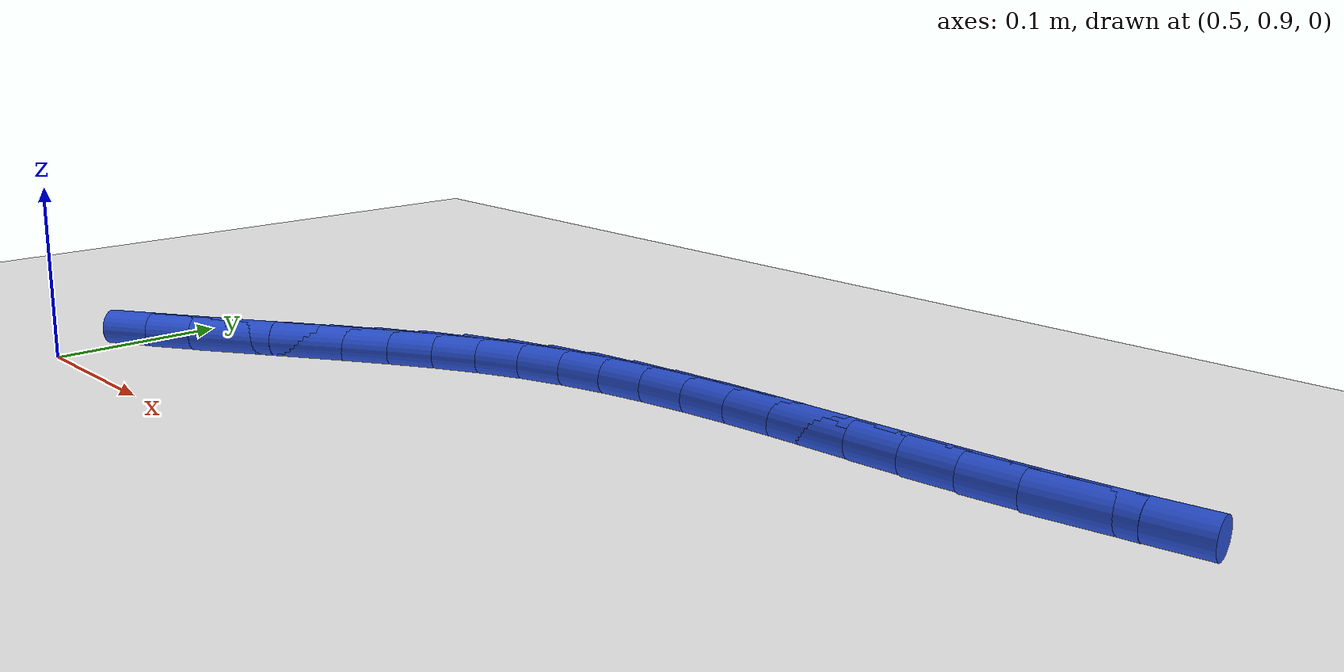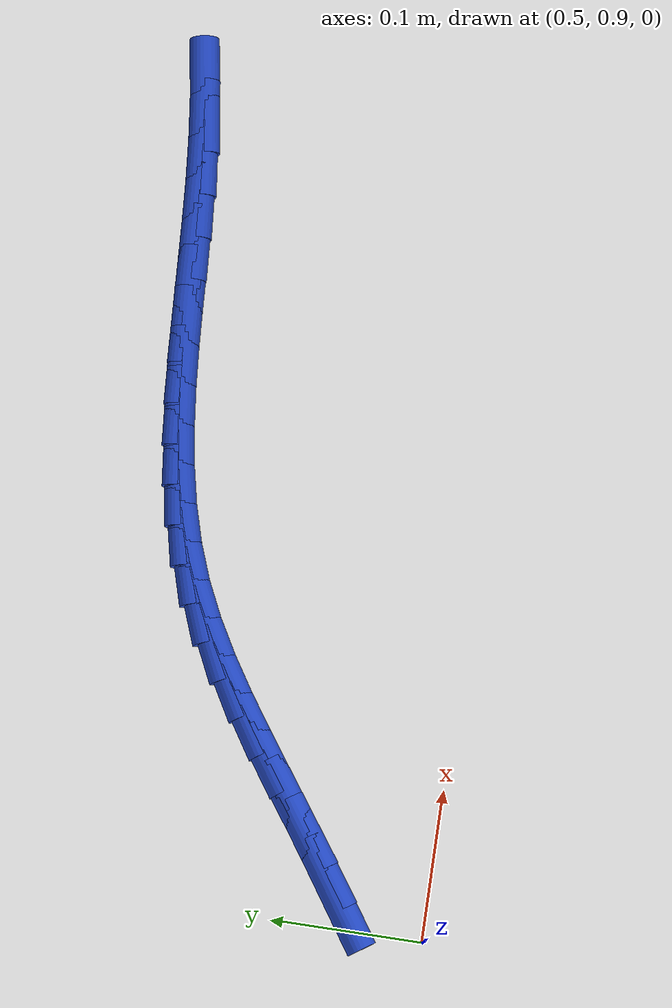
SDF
<sdf version="1.6">
 <world name="default">
  <model name="ground_plane">
   <static>1</static>
   <link name="link">
    <collision name="collision">
     <geometry><plane><normal>0 0 1</normal><size>100 100</size></plane></geometry>
     <surface><friction><ode><mu>100</mu><mu2>50</mu2></ode></friction></surface>
    </collision>
    <visual name="visual">
     <cast_shadows>0</cast_shadows>
     <geometry><plane><normal>0 0 1</normal><size>100 100</size></plane></geometry>
     <material>
      <script><uri>file://media/materials/scripts/gazebo.material</uri><name>Gazebo/WhiteGlow</name></script>
     </material>
    </visual>
   </link>
  </model>
  <model name="line">
   <link name="link_41">
    <pose>0.5230574491950812 0.9609889501646389 0.01 0 1.57 0.5958737178467861</pose>
    <collision name="collision">
     <geometry><cylinder><radius>0.01</radius><length>0.08</length></cylinder></geometry>
    </collision>
    <visual name="visual">
     <material>
      <script><name>Gazebo/Blue</name><uri>file://media/materials/scripts/gazebo.material</uri></script>
     </material>
     <geometry><cylinder><radius>0.01</radius><length>0.08</length></cylinder></geometry>
    </visual>
   </link>
   <link name="link_42">
    <pose>0.5465419990912921 0.9769137357535914 0.01 0 1.57 0.6089687074949973</pose>
    <collision name="collision">
     <geometry><cylinder><radius>0.01</radius><length>0.08</length></cylinder></geometry>
    </collision>
    <visual name="visual">
     <material>
      <script><name>Gazebo/Blue</name><uri>file://media/materials/scripts/gazebo.material</uri></script>
     </material>
     <geometry><cylinder><radius>0.01</radius><length>0.08</length></cylinder></geometry>
    </visual>
   </link>
   <link name="link_43">
    <pose>0.5698420164162342 0.9931628160364071 0.01 0 1.57 0.6210869009097102</pose>
    <collision name="collision">
     <geometry><cylinder><radius>0.01</radius><length>0.08</length></cylinder></geometry>
    </collision>
    <visual name="visual">
     <material>
      <script><name>Gazebo/Blue</name><uri>file://media/materials/scripts/gazebo.material</uri></script>
     </material>
     <geometry><cylinder><radius>0.01</radius><length>0.08</length></cylinder></geometry>
    </visual>
   </link>
   <link name="link_44">
    <pose>0.5929145813322566 1.0096724161403416 0.01 0 1.57 0.6189211969321312</pose>
    <collision name="collision">
     <geometry><cylinder><radius>0.01</radius><length>0.08</length></cylinder></geometry>
    </collision>
    <visual name="visual">
     <material>
      <script><name>Gazebo/Blue</name><uri>file://media/materials/scripts/gazebo.material</uri></script>
     </material>
     <geometry><cylinder><radius>0.01</radius><length>0.08</length></cylinder></geometry>
    </visual>
   </link>
   <link name="link_45">
    <pose>0.6158930248125853 1.0260395392483195 0.01 0 1.57 0.6009778712239809</pose>
    <collision name="collision">
     <geometry><cylinder><radius>0.01</radius><length>0.08</length></cylinder></geometry>
    </collision>
    <visual name="visual">
     <material>
      <script><name>Gazebo/Blue</name><uri>file://media/materials/scripts/gazebo.material</uri></script>
     </material>
     <geometry><cylinder><radius>0.01</radius><length>0.08</length></cylinder></geometry>
    </visual>
   </link>
   <link name="link_46">
    <pose>0.6389265233182552 1.0418306914513293 0.01 0 1.57 0.5665466748718254</pose>
    <collision name="collision">
     <geometry><cylinder><radius>0.01</radius><length>0.08</length></cylinder></geometry>
    </collision>
    <visual name="visual">
     <material>
      <script><name>Gazebo/Blue</name><uri>file://media/materials/scripts/gazebo.material</uri></script>
     </material>
     <geometry><cylinder><radius>0.01</radius><length>0.08</length></cylinder></geometry>
    </visual>
   </link>
   <link name="link_47">
    <pose>0.6621642533103005 1.0566123788403596 0.01 0 1.57 0.5145993104859804</pose>
    <collision name="collision">
     <geometry><cylinder><radius>0.01</radius><length>0.08</length></cylinder></geometry>
    </collision>
    <visual name="visual">
     <material>
      <script><name>Gazebo/Blue</name><uri>file://media/materials/scripts/gazebo.material</uri></script>
     </material>
     <geometry><cylinder><radius>0.01</radius><length>0.08</length></cylinder></geometry>
    </visual>
   </link>
   <link name="link_48">
    <pose>0.6857553912497557 1.0699511075063983 0.01 0 1.57 0.44404951910670887</pose>
    <collision name="collision">
     <geometry><cylinder><radius>0.01</radius><length>0.08</length></cylinder></geometry>
    </collision>
    <visual name="visual">
     <material>
      <script><name>Gazebo/Blue</name><uri>file://media/materials/scripts/gazebo.material</uri></script>
     </material>
     <geometry><cylinder><radius>0.01</radius><length>0.08</length></cylinder></geometry>
    </visual>
   </link>
   <link name="link_49">
    <pose>0.7098491135976555 1.0814133835404351 0.01 0 1.57 0.35898176075363597</pose>
    <collision name="collision">
     <geometry><cylinder><radius>0.01</radius><length>0.08</length></cylinder></geometry>
    </collision>
    <visual name="visual">
     <material>
      <script><name>Gazebo/Blue</name><uri>file://media/materials/scripts/gazebo.material</uri></script>
     </material>
     <geometry><cylinder><radius>0.01</radius><length>0.08</length></cylinder></geometry>
    </visual>
   </link>
   <link name="link_50">
    <pose>0.7345631495969542 1.0906870980353853 0.01 0 1.57 0.2791735003921183</pose>
    <collision name="collision">
     <geometry><cylinder><radius>0.01</radius><length>0.08</length></cylinder></geometry>
    </collision>
    <visual name="visual">
     <material>
      <script><name>Gazebo/Blue</name><uri>file://media/materials/scripts/gazebo.material</uri></script>
     </material>
     <geometry><cylinder><radius>0.01</radius><length>0.08</length></cylinder></geometry>
    </visual>
   </link>
   <link name="link_51">
    <pose>0.7598890917260953 1.0979470249418024 0.01 0 1.57 0.2108510609055413</pose>
    <collision name="collision">
     <geometry><cylinder><radius>0.01</radius><length>0.08</length></cylinder></geometry>
    </collision>
    <visual name="visual">
     <material>
      <script><name>Gazebo/Blue</name><uri>file://media/materials/scripts/gazebo.material</uri></script>
     </material>
     <geometry><cylinder><radius>0.01</radius><length>0.08</length></cylinder></geometry>
    </visual>
   </link>
   <link name="link_52">
    <pose>0.7857869110589404 1.1034899955650825 0.01 0 1.57 0.15474594954398432</pose>
    <collision name="collision">
     <geometry><cylinder><radius>0.01</radius><length>0.08</length></cylinder></geometry>
    </collision>
    <visual name="visual">
     <material>
      <script><name>Gazebo/Blue</name><uri>file://media/materials/scripts/gazebo.material</uri></script>
     </material>
     <geometry><cylinder><radius>0.01</radius><length>0.08</length></cylinder></geometry>
    </visual>
   </link>
   <link name="link_53">
    <pose>0.8122165786693271 1.1076128412107167 0.01 0 1.57 0.11096086138013077</pose>
    <collision name="collision">
     <geometry><cylinder><radius>0.01</radius><length>0.08</length></cylinder></geometry>
    </collision>
    <visual name="visual">
     <material>
      <script><name>Gazebo/Blue</name><uri>file://media/materials/scripts/gazebo.material</uri></script>
     </material>
     <geometry><cylinder><radius>0.01</radius><length>0.08</length></cylinder></geometry>
    </visual>
   </link>
   <link name="link_54">
    <pose>0.8391380656310933 1.110612393184196 0.01 0 1.57 0.07922111700663534</pose>
    <collision name="collision">
     <geometry><cylinder><radius>0.01</radius><length>0.08</length></cylinder></geometry>
    </collision>
    <visual name="visual">
     <material>
      <script><name>Gazebo/Blue</name><uri>file://media/materials/scripts/gazebo.material</uri></script>
     </material>
     <geometry><cylinder><radius>0.01</radius><length>0.08</length></cylinder></geometry>
    </visual>
   </link>
   <link name="link_55">
    <pose>0.8665113430180766 1.1127854827910109 0.01 0 1.57 0.0590802107198235</pose>
    <collision name="collision">
     <geometry><cylinder><radius>0.01</radius><length>0.08</length></cylinder></geometry>
    </collision>
    <visual name="visual">
     <material>
      <script><name>Gazebo/Blue</name><uri>file://media/materials/scripts/gazebo.material</uri></script>
     </material>
     <geometry><cylinder><radius>0.01</radius><length>0.08</length></cylinder></geometry>
    </visual>
   </link>
   <link name="link_56">
    <pose>0.8942963819041141 1.1144289413366524 0.01 0 1.57 0.05005830667922557</pose>
    <collision name="collision">
     <geometry><cylinder><radius>0.01</radius><length>0.08</length></cylinder></geometry>
    </collision>
    <visual name="visual">
     <material>
      <script><name>Gazebo/Blue</name><uri>file://media/materials/scripts/gazebo.material</uri></script>
     </material>
     <geometry><cylinder><radius>0.01</radius><length>0.08</length></cylinder></geometry>
    </visual>
   </link>
   <link name="link_57">
    <pose>0.9224531533630438 1.1158396001266122 0.01 0 1.57 0.051718292216427625</pose>
    <collision name="collision">
     <geometry><cylinder><radius>0.01</radius><length>0.08</length></cylinder></geometry>
    </collision>
    <visual name="visual">
     <material>
      <script><name>Gazebo/Blue</name><uri>file://media/materials/scripts/gazebo.material</uri></script>
     </material>
     <geometry><cylinder><radius>0.01</radius><length>0.08</length></cylinder></geometry>
    </visual>
   </link>
   <link name="link_58">
    <pose>0.9509416284687031 1.1173142904663806 0.01 0 1.57 0.06369217819667426</pose>
    <collision name="collision">
     <geometry><cylinder><radius>0.01</radius><length>0.08</length></cylinder></geometry>
    </collision>
    <visual name="visual">
     <material>
      <script><name>Gazebo/Blue</name><uri>file://media/materials/scripts/gazebo.material</uri></script>
     </material>
     <geometry><cylinder><radius>0.01</radius><length>0.08</length></cylinder></geometry>
    </visual>
   </link>
   <link name="link_59">
    <pose>0.9797217782949296 1.1191498436614489 0.01 0 1.57 0.08566968583334234</pose>
    <collision name="collision">
     <geometry><cylinder><radius>0.01</radius><length>0.08</length></cylinder></geometry>
    </collision>
    <visual name="visual">
     <material>
      <script><name>Gazebo/Blue</name><uri>file://media/materials/scripts/gazebo.material</uri></script>
     </material>
     <geometry><cylinder><radius>0.01</radius><length>0.08</length></cylinder></geometry>
    </visual>
   </link>
   <link name="link_60">
    <pose>1.008753573915561 1.1216430910173079 0.01 0 1.57 0.11735736490985195</pose>
    <collision name="collision">
     <geometry><cylinder><radius>0.01</radius><length>0.08</length></cylinder></geometry>
    </collision>
    <visual name="visual">
     <material>
      <script><name>Gazebo/Blue</name><uri>file://media/materials/scripts/gazebo.material</uri></script>
     </material>
     <geometry><cylinder><radius>0.01</radius><length>0.08</length></cylinder></geometry>
    </visual>
   </link>
   <link name="link_61">
    <pose>1.0379969864044343 1.1250908638394481 0.01 0 1.57 0.15594105148258436</pose>
    <collision name="collision">
     <geometry><cylinder><radius>0.01</radius><length>0.08</length></cylinder></geometry>
    </collision>
    <visual name="visual">
     <material>
      <script><name>Gazebo/Blue</name><uri>file://media/materials/scripts/gazebo.material</uri></script>
     </material>
     <geometry><cylinder><radius>0.01</radius><length>0.08</length></cylinder></geometry>
    </visual>
   </link>
  </model>
 </world>
</sdf>
